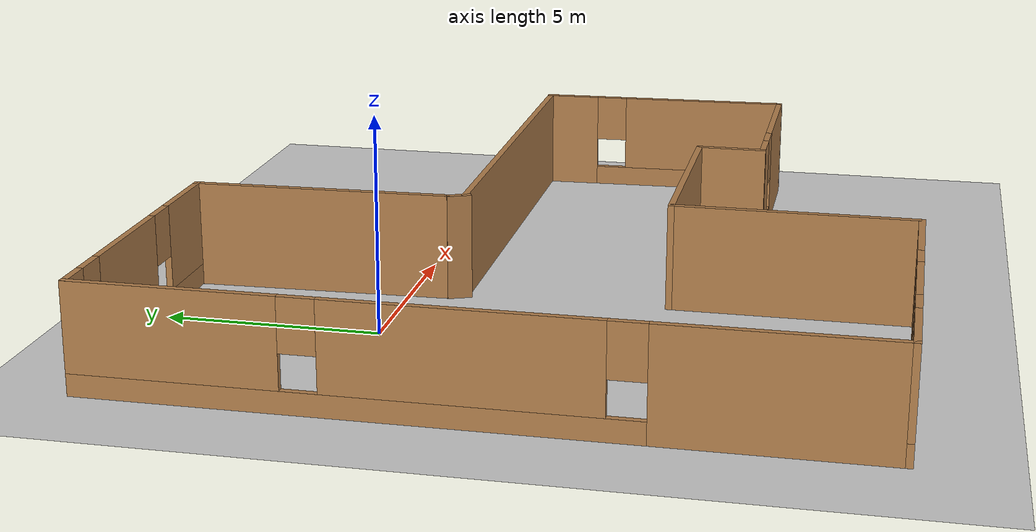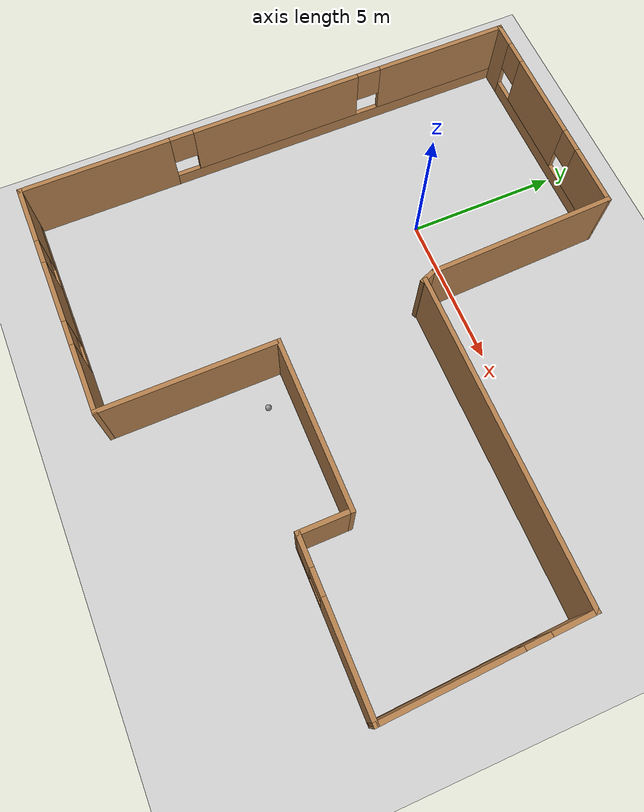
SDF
<sdf version="1.6">
 <world name="default">
  <light name="sun" type="directional">
   <pose>0 0 10 0 -0 0</pose>
   <diffuse>0.8 0.8 0.8 1</diffuse>
   <specular>0.2 0.2 0.2 1</specular>
   <attenuation>
    <range>1000</range>
    <constant>0.9</constant>
    <linear>0.01</linear>
    <quadratic>0.001</quadratic>
   </attenuation>
   <direction>-0.5 0.1 -0.9</direction>
  </light>
  <model name="ground_plane">
   <static>1</static>
   <link name="link">
    <collision name="collision">
     <geometry><plane><normal>0 0 1</normal><size>100 100</size></plane></geometry>
     <surface><friction><ode><mu>100</mu><mu2>50</mu2></ode></friction></surface>
    </collision>
    <visual name="visual">
     <cast_shadows>0</cast_shadows>
     <geometry><plane><normal>0 0 1</normal><size>100 100</size></plane></geometry>
     <material>
      <script><uri>file://media/materials/scripts/gazebo.material</uri><name>Gazebo/Grey</name></script>
     </material>
    </visual>
   </link>
  </model>
  <gravity>0 0 -9.8</gravity>
  <magnetic_field>6e-06 2.3e-05 -4.2e-05</magnetic_field>
  <atmosphere type="adiabatic"/>
  <physics name="default_physics" default="0" type="ode">
   <max_step_size>0.001</max_step_size>
   <real_time_factor>1</real_time_factor>
   <real_time_update_rate>1000</real_time_update_rate>
  </physics>
  <scene><ambient>0.4 0.4 0.4 1</ambient><background>0.7 0.7 0.7 1</background><shadows>1</shadows></scene>
  <spherical_coordinates>
   <surface_model>EARTH_WGS84</surface_model>
   <latitude_deg>0</latitude_deg>
   <longitude_deg>0</longitude_deg>
   <elevation>0</elevation>
   <heading_deg>0</heading_deg>
  </spherical_coordinates>
  <model name="project2_building">
   <pose>4.308 -3.26763 0 0 -0 0</pose>
   <link name="Wall_1">
    <collision name="Wall_1_Collision">
     <geometry><box><size>10.5 0.15 2.5</size></box></geometry>
     <pose>0 0 1.25 0 -0 0</pose>
    </collision>
    <visual name="Wall_1_Visual">
     <pose>0 0 1.25 0 -0 0</pose>
     <geometry><box><size>10.5 0.15 2.5</size></box></geometry>
     <material>
      <script><uri>file://media/materials/scripts/gazebo.material</uri><name>Gazebo/Wood</name></script>
      <ambient>1 1 1 1</ambient>
     </material>
     <meta><layer>0</layer></meta>
    </visual>
    <pose>3.72356 1.96596 0 0 -0 0</pose>
   </link>
   <link name="Wall_10">
    <collision name="Wall_10_Collision">
     <geometry><box><size>6.21461 0.15 2.5</size></box></geometry>
     <pose>0 0 1.25 0 -0 0</pose>
    </collision>
    <visual name="Wall_10_Visual">
     <pose>0 0 1.25 0 -0 0</pose>
     <geometry><box><size>6.21461 0.15 2.5</size></box></geometry>
     <material>
      <script><uri>file://media/materials/scripts/gazebo.material</uri><name>Gazebo/Wood</name></script>
      <ambient>1 1 1 1</ambient>
     </material>
     <meta><layer>0</layer></meta>
    </visual>
    <pose>-1.70914 5.39297 0 0 0 -1.54035</pose>
   </link>
   <link name="Wall_11">
    <collision name="Wall_11_Collision">
     <geometry><box><size>0.579263 0.15 2.5</size></box></geometry>
     <pose>0 0 1.25 0 -0 0</pose>
    </collision>
    <visual name="Wall_11_Visual">
     <pose>0 0 1.25 0 -0 0</pose>
     <geometry><box><size>0.579263 0.15 2.5</size></box></geometry>
     <material>
      <script><uri>file://media/materials/scripts/gazebo.material</uri><name>Gazebo/Wood</name></script>
      <ambient>1 1 1 1</ambient>
     </material>
     <meta><layer>0</layer></meta>
    </visual>
    <pose>-1.53415 2.10249 0 0 0 -1.17521</pose>
   </link>
   <link name="Wall_2">
    <pose>9.02356 -1.23008 0 0 0 -1.53171</pose>
    <visual name="Wall_2_Visual_0">
     <pose>-2.56284 0 1.25 0 -0 0</pose>
     <geometry><box><size>1.42129 0.15 2.5</size></box></geometry>
     <material>
      <script><uri>file://media/materials/scripts/gazebo.material</uri><name>Gazebo/Wood</name></script>
      <ambient>1 1 1 1</ambient>
     </material>
     <meta><layer>0</layer></meta>
    </visual>
    <collision name="Wall_2_Collision_0">
     <geometry><box><size>1.42129 0.15 2.5</size></box></geometry>
     <pose>-2.56284 0 1.25 0 -0 0</pose>
    </collision>
    <visual name="Wall_2_Visual_1">
     <pose>0.710646 0 0.25 0 -0 0</pose>
     <geometry><box><size>5.12568 0.15 0.5</size></box></geometry>
     <material>
      <script><uri>file://media/materials/scripts/gazebo.material</uri><name>Gazebo/Wood</name></script>
      <ambient>1 1 1 1</ambient>
     </material>
     <meta><layer>0</layer></meta>
    </visual>
    <collision name="Wall_2_Collision_1">
     <geometry><box><size>5.12568 0.15 0.5</size></box></geometry>
     <pose>0.710646 0 0.25 0 -0 0</pose>
    </collision>
    <visual name="Wall_2_Visual_2">
     <pose>1.11065 0 1.5 0 -0 0</pose>
     <geometry><box><size>4.32568 0.15 2</size></box></geometry>
     <material>
      <script><uri>file://media/materials/scripts/gazebo.material</uri><name>Gazebo/Wood</name></script>
      <ambient>1 1 1 1</ambient>
     </material>
     <meta><layer>0</layer></meta>
    </visual>
    <collision name="Wall_2_Collision_2">
     <geometry><box><size>4.32568 0.15 2</size></box></geometry>
     <pose>1.11065 0 1.5 0 -0 0</pose>
    </collision>
    <visual name="Wall_2_Visual_3">
     <pose>-1.45219 0 1.9 0 -0 0</pose>
     <geometry><box><size>0.8 0.15 1.2</size></box></geometry>
     <material>
      <script><uri>file://media/materials/scripts/gazebo.material</uri><name>Gazebo/Wood</name></script>
      <ambient>1 1 1 1</ambient>
     </material>
     <meta><layer>0</layer></meta>
    </visual>
    <collision name="Wall_2_Collision_3">
     <geometry><box><size>0.8 0.15 1.2</size></box></geometry>
     <pose>-1.45219 0 1.9 0 -0 0</pose>
    </collision>
   </link>
   <link name="Wall_3">
    <pose>6.59856 -4.42612 0 0 -0 3.14159</pose>
    <visual name="Wall_3_Visual_0">
     <pose>-0.924717 0 1.25 0 -0 0</pose>
     <geometry><box><size>3.40057 0.15 2.5</size></box></geometry>
     <material>
      <script><uri>file://media/materials/scripts/gazebo.material</uri><name>Gazebo/Wood</name></script>
      <ambient>1 1 1 1</ambient>
     </material>
     <meta><layer>0</layer></meta>
    </visual>
    <collision name="Wall_3_Collision_0">
     <geometry><box><size>3.40057 0.15 2.5</size></box></geometry>
     <pose>-0.924717 0 1.25 0 -0 0</pose>
    </collision>
    <visual name="Wall_3_Visual_1">
     <pose>1.70028 0 0.25 0 -0 0</pose>
     <geometry><box><size>1.84943 0.15 0.5</size></box></geometry>
     <material>
      <script><uri>file://media/materials/scripts/gazebo.material</uri><name>Gazebo/Wood</name></script>
      <ambient>1 1 1 1</ambient>
     </material>
     <meta><layer>0</layer></meta>
    </visual>
    <collision name="Wall_3_Collision_1">
     <geometry><box><size>1.84943 0.15 0.5</size></box></geometry>
     <pose>1.70028 0 0.25 0 -0 0</pose>
    </collision>
    <visual name="Wall_3_Visual_2">
     <pose>2.10028 0 1.5 0 -0 0</pose>
     <geometry><box><size>1.04943 0.15 2</size></box></geometry>
     <material>
      <script><uri>file://media/materials/scripts/gazebo.material</uri><name>Gazebo/Wood</name></script>
      <ambient>1 1 1 1</ambient>
     </material>
     <meta><layer>0</layer></meta>
    </visual>
    <collision name="Wall_3_Collision_2">
     <geometry><box><size>1.04943 0.15 2</size></box></geometry>
     <pose>2.10028 0 1.5 0 -0 0</pose>
    </collision>
    <visual name="Wall_3_Visual_3">
     <pose>1.17557 0 1.9 0 -0 0</pose>
     <geometry><box><size>0.8 0.15 1.2</size></box></geometry>
     <material>
      <script><uri>file://media/materials/scripts/gazebo.material</uri><name>Gazebo/Wood</name></script>
      <ambient>1 1 1 1</ambient>
     </material>
     <meta><layer>0</layer></meta>
    </visual>
    <collision name="Wall_3_Collision_3">
     <geometry><box><size>0.8 0.15 1.2</size></box></geometry>
     <pose>1.17557 0 1.9 0 -0 0</pose>
    </collision>
   </link>
   <link name="Wall_4">
    <collision name="Wall_4_Collision">
     <geometry><box><size>1.75 0.15 2.5</size></box></geometry>
     <pose>0 0 1.25 0 -0 0</pose>
    </collision>
    <visual name="Wall_4_Visual">
     <pose>0 0 1.25 0 -0 0</pose>
     <geometry><box><size>1.75 0.15 2.5</size></box></geometry>
     <material>
      <script><uri>file://media/materials/scripts/gazebo.material</uri><name>Gazebo/Wood</name></script>
      <ambient>1 1 1 1</ambient>
     </material>
     <meta><layer>0</layer></meta>
    </visual>
    <pose>4.04856 -3.62612 0 0 -0 1.5708</pose>
   </link>
   <link name="Wall_5">
    <collision name="Wall_5_Collision">
     <geometry><box><size>5.5 0.15 2.5</size></box></geometry>
     <pose>0 0 1.25 0 -0 0</pose>
    </collision>
    <visual name="Wall_5_Visual">
     <pose>0 0 1.25 0 -0 0</pose>
     <geometry><box><size>5.5 0.15 2.5</size></box></geometry>
     <material>
      <script><uri>file://media/materials/scripts/gazebo.material</uri><name>Gazebo/Wood</name></script>
      <ambient>1 1 1 1</ambient>
     </material>
     <meta><layer>0</layer></meta>
    </visual>
    <pose>1.37356 -2.82612 0 0 -0 3.14159</pose>
   </link>
   <link name="Wall_6">
    <collision name="Wall_6_Collision">
     <geometry><box><size>5.75 0.15 2.5</size></box></geometry>
     <pose>0 0 1.25 0 -0 0</pose>
    </collision>
    <visual name="Wall_6_Visual">
     <pose>0 0 1.25 0 -0 0</pose>
     <geometry><box><size>5.75 0.15 2.5</size></box></geometry>
     <material>
      <script><uri>file://media/materials/scripts/gazebo.material</uri><name>Gazebo/Wood</name></script>
      <ambient>1 1 1 1</ambient>
     </material>
     <meta><layer>0</layer></meta>
    </visual>
    <pose>-1.30144 -5.62612 0 0 0 -1.5708</pose>
   </link>
   <link name="Wall_7">
    <pose>-5.22644 -8.42612 0 0 -0 3.14159</pose>
    <visual name="Wall_7_Visual_0">
     <pose>-2.8521 0 1.25 0 -0 0</pose>
     <geometry><box><size>2.29581 0.15 2.5</size></box></geometry>
     <material>
      <script><uri>file://media/materials/scripts/gazebo.material</uri><name>Gazebo/Wood</name></script>
      <ambient>1 1 1 1</ambient>
     </material>
     <meta><layer>0</layer></meta>
    </visual>
    <collision name="Wall_7_Collision_0">
     <geometry><box><size>2.29581 0.15 2.5</size></box></geometry>
     <pose>-2.8521 0 1.25 0 -0 0</pose>
    </collision>
    <visual name="Wall_7_Visual_1">
     <pose>1.1479 0 0.25 0 -0 0</pose>
     <geometry><box><size>5.7042 0.15 0.5</size></box></geometry>
     <material>
      <script><uri>file://media/materials/scripts/gazebo.material</uri><name>Gazebo/Wood</name></script>
      <ambient>1 1 1 1</ambient>
     </material>
     <meta><layer>0</layer></meta>
    </visual>
    <collision name="Wall_7_Collision_1">
     <geometry><box><size>5.7042 0.15 0.5</size></box></geometry>
     <pose>1.1479 0 0.25 0 -0 0</pose>
    </collision>
    <visual name="Wall_7_Visual_2">
     <pose>0.152205 0 1.5 0 -0 0</pose>
     <geometry><box><size>2.1128 0.15 2</size></box></geometry>
     <material>
      <script><uri>file://media/materials/scripts/gazebo.material</uri><name>Gazebo/Wood</name></script>
      <ambient>1 1 1 1</ambient>
     </material>
     <meta><layer>0</layer></meta>
    </visual>
    <collision name="Wall_7_Collision_2">
     <geometry><box><size>2.1128 0.15 2</size></box></geometry>
     <pose>0.152205 0 1.5 0 -0 0</pose>
    </collision>
    <visual name="Wall_7_Visual_3">
     <pose>3.0043 0 1.5 0 -0 0</pose>
     <geometry><box><size>1.99139 0.15 2</size></box></geometry>
     <material>
      <script><uri>file://media/materials/scripts/gazebo.material</uri><name>Gazebo/Wood</name></script>
      <ambient>1 1 1 1</ambient>
     </material>
     <meta><layer>0</layer></meta>
    </visual>
    <collision name="Wall_7_Collision_3">
     <geometry><box><size>1.99139 0.15 2</size></box></geometry>
     <pose>3.0043 0 1.5 0 -0 0</pose>
    </collision>
    <visual name="Wall_7_Visual_4">
     <pose>-1.30419 0 1.9 0 -0 0</pose>
     <geometry><box><size>0.8 0.15 1.2</size></box></geometry>
     <material>
      <script><uri>file://media/materials/scripts/gazebo.material</uri><name>Gazebo/Wood</name></script>
      <ambient>1 1 1 1</ambient>
     </material>
     <meta><layer>0</layer></meta>
    </visual>
    <collision name="Wall_7_Collision_4">
     <geometry><box><size>0.8 0.15 1.2</size></box></geometry>
     <pose>-1.30419 0 1.9 0 -0 0</pose>
    </collision>
    <visual name="Wall_7_Visual_5">
     <pose>1.60861 0 1.9 0 -0 0</pose>
     <geometry><box><size>0.8 0.15 1.2</size></box></geometry>
     <material>
      <script><uri>file://media/materials/scripts/gazebo.material</uri><name>Gazebo/Wood</name></script>
      <ambient>1 1 1 1</ambient>
     </material>
     <meta><layer>0</layer></meta>
    </visual>
    <collision name="Wall_7_Collision_5">
     <geometry><box><size>0.8 0.15 1.2</size></box></geometry>
     <pose>1.60861 0 1.9 0 -0 0</pose>
    </collision>
   </link>
   <link name="Wall_8">
    <pose>-9.15144 -0.001123 0 0 -0 1.5708</pose>
    <visual name="Wall_8_Visual_0">
     <pose>-5.98183 0 1.25 0 -0 0</pose>
     <geometry><box><size>5.03634 0.15 2.5</size></box></geometry>
     <material>
      <script><uri>file://media/materials/scripts/gazebo.material</uri><name>Gazebo/Wood</name></script>
      <ambient>1 1 1 1</ambient>
     </material>
     <meta><layer>0</layer></meta>
    </visual>
    <collision name="Wall_8_Collision_0">
     <geometry><box><size>5.03634 0.15 2.5</size></box></geometry>
     <pose>-5.98183 0 1.25 0 -0 0</pose>
    </collision>
    <visual name="Wall_8_Visual_1">
     <pose>2.51817 0 0.25 0 -0 0</pose>
     <geometry><box><size>11.9637 0.15 0.5</size></box></geometry>
     <material>
      <script><uri>file://media/materials/scripts/gazebo.material</uri><name>Gazebo/Wood</name></script>
      <ambient>1 1 1 1</ambient>
     </material>
     <meta><layer>0</layer></meta>
    </visual>
    <collision name="Wall_8_Collision_1">
     <geometry><box><size>11.9637 0.15 0.5</size></box></geometry>
     <pose>2.51817 0 0.25 0 -0 0</pose>
    </collision>
    <visual name="Wall_8_Visual_2">
     <pose>0.233471 0 1.5 0 -0 0</pose>
     <geometry><box><size>5.79426 0.15 2</size></box></geometry>
     <material>
      <script><uri>file://media/materials/scripts/gazebo.material</uri><name>Gazebo/Wood</name></script>
      <ambient>1 1 1 1</ambient>
     </material>
     <meta><layer>0</layer></meta>
    </visual>
    <collision name="Wall_8_Collision_2">
     <geometry><box><size>5.79426 0.15 2</size></box></geometry>
     <pose>0.233471 0 1.5 0 -0 0</pose>
    </collision>
    <visual name="Wall_8_Visual_3">
     <pose>6.2153 0 1.5 0 -0 0</pose>
     <geometry><box><size>4.5694 0.15 2</size></box></geometry>
     <material>
      <script><uri>file://media/materials/scripts/gazebo.material</uri><name>Gazebo/Wood</name></script>
      <ambient>1 1 1 1</ambient>
     </material>
     <meta><layer>0</layer></meta>
    </visual>
    <collision name="Wall_8_Collision_3">
     <geometry><box><size>4.5694 0.15 2</size></box></geometry>
     <pose>6.2153 0 1.5 0 -0 0</pose>
    </collision>
    <visual name="Wall_8_Visual_4">
     <pose>-3.06366 0 1.9 0 -0 0</pose>
     <geometry><box><size>0.8 0.15 1.2</size></box></geometry>
     <material>
      <script><uri>file://media/materials/scripts/gazebo.material</uri><name>Gazebo/Wood</name></script>
      <ambient>1 1 1 1</ambient>
     </material>
     <meta><layer>0</layer></meta>
    </visual>
    <collision name="Wall_8_Collision_4">
     <geometry><box><size>0.8 0.15 1.2</size></box></geometry>
     <pose>-3.06366 0 1.9 0 -0 0</pose>
    </collision>
    <visual name="Wall_8_Visual_5">
     <pose>3.5306 0 1.9 0 -0 0</pose>
     <geometry><box><size>0.8 0.15 1.2</size></box></geometry>
     <material>
      <script><uri>file://media/materials/scripts/gazebo.material</uri><name>Gazebo/Wood</name></script>
      <ambient>1 1 1 1</ambient>
     </material>
     <meta><layer>0</layer></meta>
    </visual>
    <collision name="Wall_8_Collision_5">
     <geometry><box><size>0.8 0.15 1.2</size></box></geometry>
     <pose>3.5306 0 1.9 0 -0 0</pose>
    </collision>
   </link>
   <link name="Wall_9">
    <pose>-5.47644 8.42388 0 0 -0 0</pose>
    <visual name="Wall_9_Visual_0">
     <pose>-3.32651 0 1.25 0 -0 0</pose>
     <geometry><box><size>0.846977 0.15 2.5</size></box></geometry>
     <material>
      <script><uri>file://media/materials/scripts/gazebo.material</uri><name>Gazebo/Wood</name></script>
      <ambient>1 1 1 1</ambient>
     </material>
     <meta><layer>0</layer></meta>
    </visual>
    <collision name="Wall_9_Collision_0">
     <geometry><box><size>0.846977 0.15 2.5</size></box></geometry>
     <pose>-3.32651 0 1.25 0 -0 0</pose>
    </collision>
    <visual name="Wall_9_Visual_1">
     <pose>0.423488 0 0.25 0 -0 0</pose>
     <geometry><box><size>6.65302 0.15 0.5</size></box></geometry>
     <material>
      <script><uri>file://media/materials/scripts/gazebo.material</uri><name>Gazebo/Wood</name></script>
      <ambient>1 1 1 1</ambient>
     </material>
     <meta><layer>0</layer></meta>
    </visual>
    <collision name="Wall_9_Collision_1">
     <geometry><box><size>6.65302 0.15 0.5</size></box></geometry>
     <pose>0.423488 0 0.25 0 -0 0</pose>
    </collision>
    <visual name="Wall_9_Visual_2">
     <pose>-0.601611 0 1.5 0 -0 0</pose>
     <geometry><box><size>3.00282 0.15 2</size></box></geometry>
     <material>
      <script><uri>file://media/materials/scripts/gazebo.material</uri><name>Gazebo/Wood</name></script>
      <ambient>1 1 1 1</ambient>
     </material>
     <meta><layer>0</layer></meta>
    </visual>
    <collision name="Wall_9_Collision_2">
     <geometry><box><size>3.00282 0.15 2</size></box></geometry>
     <pose>-0.601611 0 1.5 0 -0 0</pose>
    </collision>
    <visual name="Wall_9_Visual_3">
     <pose>2.7249 0 1.5 0 -0 0</pose>
     <geometry><box><size>2.0502 0.15 2</size></box></geometry>
     <material>
      <script><uri>file://media/materials/scripts/gazebo.material</uri><name>Gazebo/Wood</name></script>
      <ambient>1 1 1 1</ambient>
     </material>
     <meta><layer>0</layer></meta>
    </visual>
    <collision name="Wall_9_Collision_3">
     <geometry><box><size>2.0502 0.15 2</size></box></geometry>
     <pose>2.7249 0 1.5 0 -0 0</pose>
    </collision>
    <visual name="Wall_9_Visual_4">
     <pose>-2.50302 0 1.9 0 -0 0</pose>
     <geometry><box><size>0.8 0.15 1.2</size></box></geometry>
     <material>
      <script><uri>file://media/materials/scripts/gazebo.material</uri><name>Gazebo/Wood</name></script>
      <ambient>1 1 1 1</ambient>
     </material>
     <meta><layer>0</layer></meta>
    </visual>
    <collision name="Wall_9_Collision_4">
     <geometry><box><size>0.8 0.15 1.2</size></box></geometry>
     <pose>-2.50302 0 1.9 0 -0 0</pose>
    </collision>
    <visual name="Wall_9_Visual_5">
     <pose>1.2998 0 1.9 0 -0 0</pose>
     <geometry><box><size>0.8 0.15 1.2</size></box></geometry>
     <material>
      <script><uri>file://media/materials/scripts/gazebo.material</uri><name>Gazebo/Wood</name></script>
      <ambient>1 1 1 1</ambient>
     </material>
     <meta><layer>0</layer></meta>
    </visual>
    <collision name="Wall_9_Collision_5">
     <geometry><box><size>0.8 0.15 1.2</size></box></geometry>
     <pose>1.2998 0 1.9 0 -0 0</pose>
    </collision>
   </link>
   <static>1</static>
  </model>
  <model name="white_ball">
   <link name="link">
    <inertial>
     <mass>1</mass>
     <inertia><ixx>0.1</ixx><ixy>0</ixy><ixz>0</ixz><iyy>0.1</iyy><iyz>0</iyz><izz>0.1</izz></inertia>
    </inertial>
    <visual name="visual">
     <geometry><sphere><radius>0.1</radius></sphere></geometry>
     <material>
      <script><name>Gazebo/Grey</name><uri>file://media/materials/scripts/gazebo.material</uri></script>
      <ambient>1 1 1 1</ambient>
      <diffuse>1 1 1 1</diffuse>
      <specular>1 1 1 1</specular>
      <emissive>1 1 1 1</emissive>
      <shader type="vertex"><normal_map>__default__</normal_map></shader>
     </material>
    </visual>
    <collision name="collision">
     <geometry><sphere><radius>0.1</radius></sphere></geometry>
     <surface>
      <friction>
       <ode><mu>1</mu><mu2>1</mu2><fdir1>0 0 0</fdir1><slip1>0</slip1><slip2>0</slip2></ode>
       <torsional>
        <coefficient>1</coefficient>
        <patch_radius>0</patch_radius>
        <surface_radius>0</surface_radius>
        <use_patch_radius>1</use_patch_radius>
        <ode><slip>0</slip></ode>
       </torsional>
      </friction>
      <bounce><restitution_coefficient>0</restitution_coefficient><threshold>1e+06</threshold></bounce>
      <contact>
       <collide_without_contact>0</collide_without_contact>
       <collide_without_contact_bitmask>1</collide_without_contact_bitmask>
       <collide_bitmask>1</collide_bitmask>
       <ode>
        <soft_cfm>0</soft_cfm>
        <soft_erp>0.2</soft_erp>
        <kp>1e+13</kp>
        <kd>1</kd>
        <max_vel>0.01</max_vel>
        <min_depth>0</min_depth>
       </ode>
       <bullet>
        <split_impulse>1</split_impulse>
        <split_impulse_penetration_threshold>-0.01</split_impulse_penetration_threshold>
        <soft_cfm>0</soft_cfm>
        <soft_erp>0.2</soft_erp>
        <kp>1e+13</kp>
        <kd>1</kd>
       </bullet>
      </contact>
     </surface>
    </collision>
   </link>
   <static>0</static>
   <pose>4.00218 -6.92597 0.1 0 -0 0</pose>
  </model>
 </world>
</sdf>
